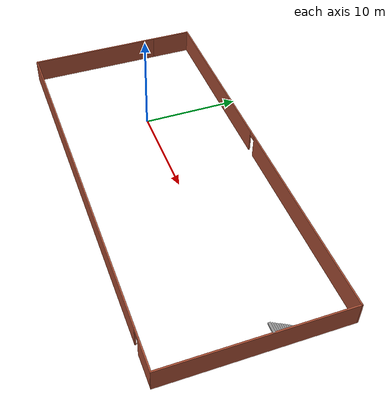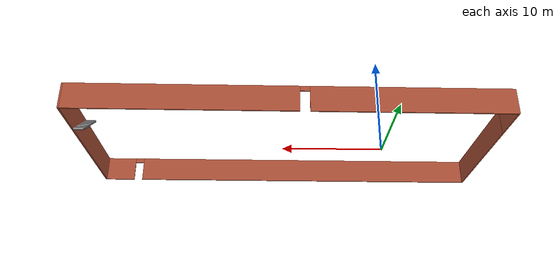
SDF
<?xml version='1.0'?>
<sdf version='1.7'>
  <model name='Warehouse'>
  <world name="world">
      <include>
          <uri>model://ground_plane</uri>
      </include>
      <include>
          <uri>model://sun</uri>
      </include>
  </world>
    <pose>9.40981 -0.426866 0 0 -0 0</pose>
    <link name='Stairs_0'>
      <visual name='Stairs_0_Visual_0'>
        <pose>19.8036 4.44738 0.083333 0 -0 0</pose>
        <geometry>
          <box>
            <size>1 0.233333 0.166667</size>
          </box>
        </geometry>
        <material>
          <script>
            <uri>file://media/materials/scripts/gazebo.material</uri>
            <name>Gazebo/Grey</name>
          </script>
          <ambient>1 1 1 1</ambient>
        </material>
        <meta>
          <layer>0</layer>
        </meta>
      </visual>
      <collision name='Stairs_0_Collision_0'>
        <geometry>
          <box>
            <size>1 0.233333 0.166667</size>
          </box>
        </geometry>
        <pose>19.8036 4.44738 0.083333 0 -0 0</pose>
      </collision>
      <visual name='Stairs_0_Visual_1'>
        <pose>19.8036 4.21404 0.25 0 -0 0</pose>
        <geometry>
          <box>
            <size>1 0.233333 0.166667</size>
          </box>
        </geometry>
        <material>
          <script>
            <uri>file://media/materials/scripts/gazebo.material</uri>
            <name>Gazebo/Grey</name>
          </script>
          <ambient>1 1 1 1</ambient>
        </material>
        <meta>
          <layer>0</layer>
        </meta>
      </visual>
      <collision name='Stairs_0_Collision_1'>
        <geometry>
          <box>
            <size>1 0.233333 0.166667</size>
          </box>
        </geometry>
        <pose>19.8036 4.21404 0.25 0 -0 0</pose>
      </collision>
      <visual name='Stairs_0_Visual_2'>
        <pose>19.8036 3.98071 0.416667 0 -0 0</pose>
        <geometry>
          <box>
            <size>1 0.233333 0.166667</size>
          </box>
        </geometry>
        <material>
          <script>
            <uri>file://media/materials/scripts/gazebo.material</uri>
            <name>Gazebo/Grey</name>
          </script>
          <ambient>1 1 1 1</ambient>
        </material>
        <meta>
          <layer>0</layer>
        </meta>
      </visual>
      <collision name='Stairs_0_Collision_2'>
        <geometry>
          <box>
            <size>1 0.233333 0.166667</size>
          </box>
        </geometry>
        <pose>19.8036 3.98071 0.416667 0 -0 0</pose>
      </collision>
      <visual name='Stairs_0_Visual_3'>
        <pose>19.8036 3.74738 0.583333 0 -0 0</pose>
        <geometry>
          <box>
            <size>1 0.233333 0.166667</size>
          </box>
        </geometry>
        <material>
          <script>
            <uri>file://media/materials/scripts/gazebo.material</uri>
            <name>Gazebo/Grey</name>
          </script>
          <ambient>1 1 1 1</ambient>
        </material>
        <meta>
          <layer>0</layer>
        </meta>
      </visual>
      <collision name='Stairs_0_Collision_3'>
        <geometry>
          <box>
            <size>1 0.233333 0.166667</size>
          </box>
        </geometry>
        <pose>19.8036 3.74738 0.583333 0 -0 0</pose>
      </collision>
      <visual name='Stairs_0_Visual_4'>
        <pose>19.8036 3.51404 0.75 0 -0 0</pose>
        <geometry>
          <box>
            <size>1 0.233333 0.166667</size>
          </box>
        </geometry>
        <material>
          <script>
            <uri>file://media/materials/scripts/gazebo.material</uri>
            <name>Gazebo/Grey</name>
          </script>
          <ambient>1 1 1 1</ambient>
        </material>
        <meta>
          <layer>0</layer>
        </meta>
      </visual>
      <collision name='Stairs_0_Collision_4'>
        <geometry>
          <box>
            <size>1 0.233333 0.166667</size>
          </box>
        </geometry>
        <pose>19.8036 3.51404 0.75 0 -0 0</pose>
      </collision>
      <visual name='Stairs_0_Visual_5'>
        <pose>19.8036 3.28071 0.916667 0 -0 0</pose>
        <geometry>
          <box>
            <size>1 0.233333 0.166667</size>
          </box>
        </geometry>
        <material>
          <script>
            <uri>file://media/materials/scripts/gazebo.material</uri>
            <name>Gazebo/Grey</name>
          </script>
          <ambient>1 1 1 1</ambient>
        </material>
        <meta>
          <layer>0</layer>
        </meta>
      </visual>
      <collision name='Stairs_0_Collision_5'>
        <geometry>
          <box>
            <size>1 0.233333 0.166667</size>
          </box>
        </geometry>
        <pose>19.8036 3.28071 0.916667 0 -0 0</pose>
      </collision>
      <visual name='Stairs_0_Visual_6'>
        <pose>19.8036 3.04738 1.08333 0 -0 0</pose>
        <geometry>
          <box>
            <size>1 0.233333 0.166667</size>
          </box>
        </geometry>
        <material>
          <script>
            <uri>file://media/materials/scripts/gazebo.material</uri>
            <name>Gazebo/Grey</name>
          </script>
          <ambient>1 1 1 1</ambient>
        </material>
        <meta>
          <layer>0</layer>
        </meta>
      </visual>
      <collision name='Stairs_0_Collision_6'>
        <geometry>
          <box>
            <size>1 0.233333 0.166667</size>
          </box>
        </geometry>
        <pose>19.8036 3.04738 1.08333 0 -0 0</pose>
      </collision>
      <visual name='Stairs_0_Visual_7'>
        <pose>19.8036 2.81404 1.25 0 -0 0</pose>
        <geometry>
          <box>
            <size>1 0.233333 0.166667</size>
          </box>
        </geometry>
        <material>
          <script>
            <uri>file://media/materials/scripts/gazebo.material</uri>
            <name>Gazebo/Grey</name>
          </script>
          <ambient>1 1 1 1</ambient>
        </material>
        <meta>
          <layer>0</layer>
        </meta>
      </visual>
      <collision name='Stairs_0_Collision_7'>
        <geometry>
          <box>
            <size>1 0.233333 0.166667</size>
          </box>
        </geometry>
        <pose>19.8036 2.81404 1.25 0 -0 0</pose>
      </collision>
      <visual name='Stairs_0_Visual_8'>
        <pose>19.8036 2.58071 1.41667 0 -0 0</pose>
        <geometry>
          <box>
            <size>1 0.233333 0.166667</size>
          </box>
        </geometry>
        <material>
          <script>
            <uri>file://media/materials/scripts/gazebo.material</uri>
            <name>Gazebo/Grey</name>
          </script>
          <ambient>1 1 1 1</ambient>
        </material>
        <meta>
          <layer>0</layer>
        </meta>
      </visual>
      <collision name='Stairs_0_Collision_8'>
        <geometry>
          <box>
            <size>1 0.233333 0.166667</size>
          </box>
        </geometry>
        <pose>19.8036 2.58071 1.41667 0 -0 0</pose>
      </collision>
      <visual name='Stairs_0_Visual_9'>
        <pose>19.8036 2.34738 1.58333 0 -0 0</pose>
        <geometry>
          <box>
            <size>1 0.233333 0.166667</size>
          </box>
        </geometry>
        <material>
          <script>
            <uri>file://media/materials/scripts/gazebo.material</uri>
            <name>Gazebo/Grey</name>
          </script>
          <ambient>1 1 1 1</ambient>
        </material>
        <meta>
          <layer>0</layer>
        </meta>
      </visual>
      <collision name='Stairs_0_Collision_9'>
        <geometry>
          <box>
            <size>1 0.233333 0.166667</size>
          </box>
        </geometry>
        <pose>19.8036 2.34738 1.58333 0 -0 0</pose>
      </collision>
      <visual name='Stairs_0_Visual_10'>
        <pose>19.8036 2.11404 1.75 0 -0 0</pose>
        <geometry>
          <box>
            <size>1 0.233333 0.166667</size>
          </box>
        </geometry>
        <material>
          <script>
            <uri>file://media/materials/scripts/gazebo.material</uri>
            <name>Gazebo/Grey</name>
          </script>
          <ambient>1 1 1 1</ambient>
        </material>
        <meta>
          <layer>0</layer>
        </meta>
      </visual>
      <collision name='Stairs_0_Collision_10'>
        <geometry>
          <box>
            <size>1 0.233333 0.166667</size>
          </box>
        </geometry>
        <pose>19.8036 2.11404 1.75 0 -0 0</pose>
      </collision>
      <visual name='Stairs_0_Visual_11'>
        <pose>19.8036 1.88071 1.91667 0 -0 0</pose>
        <geometry>
          <box>
            <size>1 0.233333 0.166667</size>
          </box>
        </geometry>
        <material>
          <script>
            <uri>file://media/materials/scripts/gazebo.material</uri>
            <name>Gazebo/Grey</name>
          </script>
          <ambient>1 1 1 1</ambient>
        </material>
        <meta>
          <layer>0</layer>
        </meta>
      </visual>
      <collision name='Stairs_0_Collision_11'>
        <geometry>
          <box>
            <size>1 0.233333 0.166667</size>
          </box>
        </geometry>
        <pose>19.8036 1.88071 1.91667 0 -0 0</pose>
      </collision>
      <visual name='Stairs_0_Visual_12'>
        <pose>19.8036 1.64738 2.08333 0 -0 0</pose>
        <geometry>
          <box>
            <size>1 0.233333 0.166667</size>
          </box>
        </geometry>
        <material>
          <script>
            <uri>file://media/materials/scripts/gazebo.material</uri>
            <name>Gazebo/Grey</name>
          </script>
          <ambient>1 1 1 1</ambient>
        </material>
        <meta>
          <layer>0</layer>
        </meta>
      </visual>
      <collision name='Stairs_0_Collision_12'>
        <geometry>
          <box>
            <size>1 0.233333 0.166667</size>
          </box>
        </geometry>
        <pose>19.8036 1.64738 2.08333 0 -0 0</pose>
      </collision>
      <visual name='Stairs_0_Visual_13'>
        <pose>19.8036 1.41404 2.25 0 -0 0</pose>
        <geometry>
          <box>
            <size>1 0.233333 0.166667</size>
          </box>
        </geometry>
        <material>
          <script>
            <uri>file://media/materials/scripts/gazebo.material</uri>
            <name>Gazebo/Grey</name>
          </script>
          <ambient>1 1 1 1</ambient>
        </material>
        <meta>
          <layer>0</layer>
        </meta>
      </visual>
      <collision name='Stairs_0_Collision_13'>
        <geometry>
          <box>
            <size>1 0.233333 0.166667</size>
          </box>
        </geometry>
        <pose>19.8036 1.41404 2.25 0 -0 0</pose>
      </collision>
      <visual name='Stairs_0_Visual_14'>
        <pose>19.8036 1.18071 2.41667 0 -0 0</pose>
        <geometry>
          <box>
            <size>1 0.233333 0.166667</size>
          </box>
        </geometry>
        <material>
          <script>
            <uri>file://media/materials/scripts/gazebo.material</uri>
            <name>Gazebo/Grey</name>
          </script>
          <ambient>1 1 1 1</ambient>
        </material>
        <meta>
          <layer>0</layer>
        </meta>
      </visual>
      <collision name='Stairs_0_Collision_14'>
        <geometry>
          <box>
            <size>1 0.233333 0.166667</size>
          </box>
        </geometry>
        <pose>19.8036 1.18071 2.41667 0 -0 0</pose>
      </collision>
    </link>
    <link name='Wall_13'>
      <collision name='Wall_13_Collision'>
        <geometry>
          <box>
            <size>13.75 0.15 2.5</size>
          </box>
        </geometry>
        <pose>0 0 1.25 0 -0 0</pose>
      </collision>
      <visual name='Wall_13_Visual'>
        <pose>0 0 1.25 0 -0 0</pose>
        <geometry>
          <box>
            <size>13.75 0.15 2.5</size>
          </box>
        </geometry>
        <material>
          <script>
            <uri>file://media/materials/scripts/gazebo.material</uri>
            <name>Gazebo/Bricks</name>
          </script>
          <ambient>1 1 1 1</ambient>
        </material>
        <meta>
          <layer>0</layer>
        </meta>
      </visual>
      <pose>-20.3 -2.125 0 0 -0 -1.5708</pose>
    </link>
    <link name='Wall_14'>
      <pose>0 -8.925 0 0 -0 0</pose>
      <visual name='Wall_14_Visual_0'>
        <pose>-2.04598 0 1.25 0 -0 0</pose>
        <geometry>
          <box>
            <size>36.658 0.15 2.5</size>
          </box>
        </geometry>
        <material>
          <script>
            <uri>file://media/materials/scripts/gazebo.material</uri>
            <name>Gazebo/Bricks</name>
          </script>
          <ambient>1 1 1 1</ambient>
        </material>
        <meta>
          <layer>0</layer>
        </meta>
      </visual>
      <collision name='Wall_14_Collision_0'>
        <geometry>
          <box>
            <size>36.658 0.15 2.5</size>
          </box>
        </geometry>
        <pose>-2.04598 0 1.25 0 -0 0</pose>
      </collision>
      <visual name='Wall_14_Visual_1'>
        <pose>18.779 0 1.25 0 -0 0</pose>
        <geometry>
          <box>
            <size>3.19197 0.15 2.5</size>
          </box>
        </geometry>
        <material>
          <script>
            <uri>file://media/materials/scripts/gazebo.material</uri>
            <name>Gazebo/Bricks</name>
          </script>
          <ambient>1 1 1 1</ambient>
        </material>
        <meta>
          <layer>0</layer>
        </meta>
      </visual>
      <collision name='Wall_14_Collision_1'>
        <geometry>
          <box>
            <size>3.19197 0.15 2.5</size>
          </box>
        </geometry>
        <pose>18.779 0 1.25 0 -0 0</pose>
      </collision>
      <visual name='Wall_14_Visual_2'>
        <pose>16.733 0 2.25 0 -0 0</pose>
        <geometry>
          <box>
            <size>0.9 0.15 0.5</size>
          </box>
        </geometry>
        <material>
          <script>
            <uri>file://media/materials/scripts/gazebo.material</uri>
            <name>Gazebo/Bricks</name>
          </script>
          <ambient>1 1 1 1</ambient>
        </material>
        <meta>
          <layer>0</layer>
        </meta>
      </visual>
      <collision name='Wall_14_Collision_2'>
        <geometry>
          <box>
            <size>0.9 0.15 0.5</size>
          </box>
        </geometry>
        <pose>16.733 0 2.25 0 -0 0</pose>
      </collision>
    </link>
    <link name='Wall_15'>
      <collision name='Wall_15_Collision'>
        <geometry>
          <box>
            <size>18 0.15 2.5</size>
          </box>
        </geometry>
        <pose>0 0 1.25 0 -0 0</pose>
      </collision>
      <visual name='Wall_15_Visual'>
        <pose>0 0 1.25 0 -0 0</pose>
        <geometry>
          <box>
            <size>18 0.15 2.5</size>
          </box>
        </geometry>
        <material>
          <script>
            <uri>file://media/materials/scripts/gazebo.material</uri>
            <name>Gazebo/Bricks</name>
          </script>
          <ambient>1 1 1 1</ambient>
        </material>
        <meta>
          <layer>0</layer>
        </meta>
      </visual>
      <pose>20.3 0 0 0 -0 1.5708</pose>
    </link>
    <link name='Wall_16'>
      <pose>0 8.925 0 0 -0 3.14159</pose>
      <visual name='Wall_16_Visual_0'>
        <pose>-9.77664 0 1.25 0 -0 0</pose>
        <geometry>
          <box>
            <size>21.1967 0.15 2.5</size>
          </box>
        </geometry>
        <material>
          <script>
            <uri>file://media/materials/scripts/gazebo.material</uri>
            <name>Gazebo/Bricks</name>
          </script>
          <ambient>1 1 1 1</ambient>
        </material>
        <meta>
          <layer>0</layer>
        </meta>
      </visual>
      <collision name='Wall_16_Collision_0'>
        <geometry>
          <box>
            <size>21.1967 0.15 2.5</size>
          </box>
        </geometry>
        <pose>-9.77664 0 1.25 0 -0 0</pose>
      </collision>
      <visual name='Wall_16_Visual_1'>
        <pose>11.0484 0 1.25 0 -0 0</pose>
        <geometry>
          <box>
            <size>18.6533 0.15 2.5</size>
          </box>
        </geometry>
        <material>
          <script>
            <uri>file://media/materials/scripts/gazebo.material</uri>
            <name>Gazebo/Bricks</name>
          </script>
          <ambient>1 1 1 1</ambient>
        </material>
        <meta>
          <layer>0</layer>
        </meta>
      </visual>
      <collision name='Wall_16_Collision_1'>
        <geometry>
          <box>
            <size>18.6533 0.15 2.5</size>
          </box>
        </geometry>
        <pose>11.0484 0 1.25 0 -0 0</pose>
      </collision>
      <visual name='Wall_16_Visual_2'>
        <pose>1.27172 0 2.25 0 -0 0</pose>
        <geometry>
          <box>
            <size>0.9 0.15 0.5</size>
          </box>
        </geometry>
        <material>
          <script>
            <uri>file://media/materials/scripts/gazebo.material</uri>
            <name>Gazebo/Bricks</name>
          </script>
          <ambient>1 1 1 1</ambient>
        </material>
        <meta>
          <layer>0</layer>
        </meta>
      </visual>
      <collision name='Wall_16_Collision_2'>
        <geometry>
          <box>
            <size>0.9 0.15 0.5</size>
          </box>
        </geometry>
        <pose>1.27172 0 2.25 0 -0 0</pose>
      </collision>
    </link>
    <link name='Wall_17'>
      <collision name='Wall_17_Collision'>
        <geometry>
          <box>
            <size>4.5 0.15 2.5</size>
          </box>
        </geometry>
        <pose>0 0 1.25 0 -0 0</pose>
      </collision>
      <visual name='Wall_17_Visual'>
        <pose>0 0 1.25 0 -0 0</pose>
        <geometry>
          <box>
            <size>4.5 0.15 2.5</size>
          </box>
        </geometry>
        <material>
          <script>
            <uri>file://media/materials/scripts/gazebo.material</uri>
            <name>Gazebo/Bricks</name>
          </script>
          <ambient>1 1 1 1</ambient>
        </material>
        <meta>
          <layer>0</layer>
        </meta>
      </visual>
      <pose>-20.3 6.75 0 0 -0 -1.5708</pose>
    </link>
    <static>1</static>
  </model>
</sdf>
